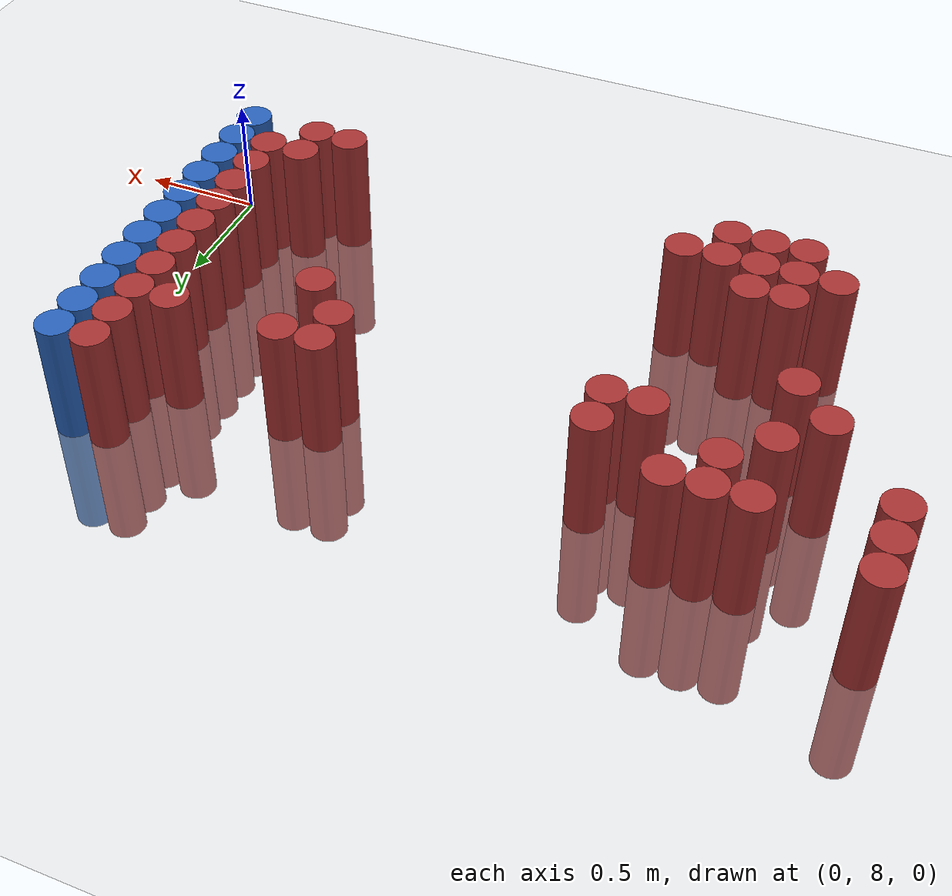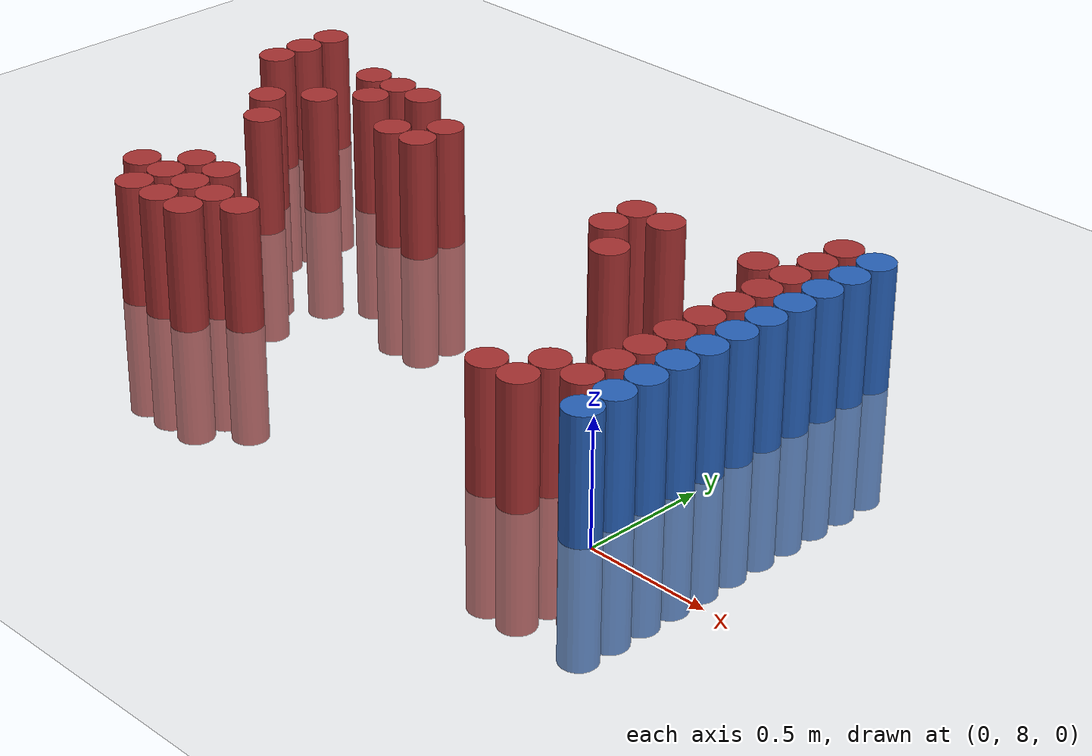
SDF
<sdf version="1.6">
 <world name="default">
  <model name="ground_plane">
   <static>1</static>
   <link name="link">
    <collision name="collision">
     <geometry><plane><normal>0 0 1</normal><size>100 100</size></plane></geometry>
     <surface><friction><ode><mu>100</mu><mu2>50</mu2></ode></friction></surface>
    </collision>
    <visual name="visual">
     <cast_shadows>0</cast_shadows>
     <geometry><plane><normal>0 0 1</normal><size>100 100</size></plane></geometry>
     <material>
      <script><uri>file://media/materials/scripts/gazebo.material</uri><name>Gazebo/Grey</name></script>
     </material>
    </visual>
   </link>
  </model>
  <model name="unit_cylinder_179">
   <static>1</static>
   <pose>-3.075000 9.225000 0.000000 0.000000 0.000000 0.000000</pose>
   <link name="link">
    <inertial>
     <mass>1</mass>
     <inertia><ixx>0.145833</ixx><ixy>0</ixy><ixz>0</ixz><iyy>0.145833</iyy><iyz>0</iyz><izz>0.125</izz></inertia>
    </inertial>
    <collision name="collision">
     <geometry><cylinder><radius>0.075000</radius><length>1</length></cylinder></geometry>
    </collision>
    <visual name="visual">
     <geometry><cylinder><radius>0.075000</radius><length>1</length></cylinder></geometry>
     <material>
      <ambient>0.648000 0.192000 0.192000 1</ambient>
      <diffuse>0.648000 0.192000 0.192000 1</diffuse>
     </material>
     <material>
      <script><name>Gazebo/Grey</name><uri>file://media/materials/scripts/gazebo.material</uri></script>
     </material>
    </visual>
   </link>
  </model>
  <model name="unit_cylinder_180">
   <static>1</static>
   <pose>-3.075000 9.375000 0.000000 0.000000 0.000000 0.000000</pose>
   <link name="link">
    <inertial>
     <mass>1</mass>
     <inertia><ixx>0.145833</ixx><ixy>0</ixy><ixz>0</ixz><iyy>0.145833</iyy><iyz>0</iyz><izz>0.125</izz></inertia>
    </inertial>
    <collision name="collision">
     <geometry><cylinder><radius>0.075000</radius><length>1</length></cylinder></geometry>
    </collision>
    <visual name="visual">
     <geometry><cylinder><radius>0.075000</radius><length>1</length></cylinder></geometry>
     <material>
      <ambient>0.648000 0.192000 0.192000 1</ambient>
      <diffuse>0.648000 0.192000 0.192000 1</diffuse>
     </material>
     <material>
      <script><name>Gazebo/Grey</name><uri>file://media/materials/scripts/gazebo.material</uri></script>
     </material>
    </visual>
   </link>
  </model>
  <model name="unit_cylinder_181">
   <static>1</static>
   <pose>-3.075000 9.525000 0.000000 0.000000 0.000000 0.000000</pose>
   <link name="link">
    <inertial>
     <mass>1</mass>
     <inertia><ixx>0.145833</ixx><ixy>0</ixy><ixz>0</ixz><iyy>0.145833</iyy><iyz>0</iyz><izz>0.125</izz></inertia>
    </inertial>
    <collision name="collision">
     <geometry><cylinder><radius>0.075000</radius><length>1</length></cylinder></geometry>
    </collision>
    <visual name="visual">
     <geometry><cylinder><radius>0.075000</radius><length>1</length></cylinder></geometry>
     <material>
      <ambient>0.648000 0.192000 0.192000 1</ambient>
      <diffuse>0.648000 0.192000 0.192000 1</diffuse>
     </material>
     <material>
      <script><name>Gazebo/Grey</name><uri>file://media/materials/scripts/gazebo.material</uri></script>
     </material>
    </visual>
   </link>
  </model>
  <model name="unit_cylinder_187">
   <static>1</static>
   <pose>-2.775000 8.925000 0.000000 0.000000 0.000000 0.000000</pose>
   <link name="link">
    <inertial>
     <mass>1</mass>
     <inertia><ixx>0.145833</ixx><ixy>0</ixy><ixz>0</ixz><iyy>0.145833</iyy><iyz>0</iyz><izz>0.125</izz></inertia>
    </inertial>
    <collision name="collision">
     <geometry><cylinder><radius>0.075000</radius><length>1</length></cylinder></geometry>
    </collision>
    <visual name="visual">
     <geometry><cylinder><radius>0.075000</radius><length>1</length></cylinder></geometry>
     <material>
      <ambient>0.648000 0.192000 0.192000 1</ambient>
      <diffuse>0.648000 0.192000 0.192000 1</diffuse>
     </material>
     <material>
      <script><name>Gazebo/Grey</name><uri>file://media/materials/scripts/gazebo.material</uri></script>
     </material>
    </visual>
   </link>
  </model>
  <model name="unit_cylinder_191">
   <static>1</static>
   <pose>-2.625000 8.175000 0.000000 0.000000 0.000000 0.000000</pose>
   <link name="link">
    <inertial>
     <mass>1</mass>
     <inertia><ixx>0.145833</ixx><ixy>0</ixy><ixz>0</ixz><iyy>0.145833</iyy><iyz>0</iyz><izz>0.125</izz></inertia>
    </inertial>
    <collision name="collision">
     <geometry><cylinder><radius>0.075000</radius><length>1</length></cylinder></geometry>
    </collision>
    <visual name="visual">
     <geometry><cylinder><radius>0.075000</radius><length>1</length></cylinder></geometry>
     <material>
      <ambient>0.648000 0.192000 0.192000 1</ambient>
      <diffuse>0.648000 0.192000 0.192000 1</diffuse>
     </material>
     <material>
      <script><name>Gazebo/Grey</name><uri>file://media/materials/scripts/gazebo.material</uri></script>
     </material>
    </visual>
   </link>
  </model>
  <model name="unit_cylinder_192">
   <static>1</static>
   <pose>-2.625000 8.775000 0.000000 0.000000 0.000000 0.000000</pose>
   <link name="link">
    <inertial>
     <mass>1</mass>
     <inertia><ixx>0.145833</ixx><ixy>0</ixy><ixz>0</ixz><iyy>0.145833</iyy><iyz>0</iyz><izz>0.125</izz></inertia>
    </inertial>
    <collision name="collision">
     <geometry><cylinder><radius>0.075000</radius><length>1</length></cylinder></geometry>
    </collision>
    <visual name="visual">
     <geometry><cylinder><radius>0.075000</radius><length>1</length></cylinder></geometry>
     <material>
      <ambient>0.648000 0.192000 0.192000 1</ambient>
      <diffuse>0.648000 0.192000 0.192000 1</diffuse>
     </material>
     <material>
      <script><name>Gazebo/Grey</name><uri>file://media/materials/scripts/gazebo.material</uri></script>
     </material>
    </visual>
   </link>
  </model>
  <model name="unit_cylinder_193">
   <static>1</static>
   <pose>-2.625000 9.075000 0.000000 0.000000 0.000000 0.000000</pose>
   <link name="link">
    <inertial>
     <mass>1</mass>
     <inertia><ixx>0.145833</ixx><ixy>0</ixy><ixz>0</ixz><iyy>0.145833</iyy><iyz>0</iyz><izz>0.125</izz></inertia>
    </inertial>
    <collision name="collision">
     <geometry><cylinder><radius>0.075000</radius><length>1</length></cylinder></geometry>
    </collision>
    <visual name="visual">
     <geometry><cylinder><radius>0.075000</radius><length>1</length></cylinder></geometry>
     <material>
      <ambient>0.648000 0.192000 0.192000 1</ambient>
      <diffuse>0.648000 0.192000 0.192000 1</diffuse>
     </material>
     <material>
      <script><name>Gazebo/Grey</name><uri>file://media/materials/scripts/gazebo.material</uri></script>
     </material>
    </visual>
   </link>
  </model>
  <model name="unit_cylinder_194">
   <static>1</static>
   <pose>-2.625000 9.375000 0.000000 0.000000 0.000000 0.000000</pose>
   <link name="link">
    <inertial>
     <mass>1</mass>
     <inertia><ixx>0.145833</ixx><ixy>0</ixy><ixz>0</ixz><iyy>0.145833</iyy><iyz>0</iyz><izz>0.125</izz></inertia>
    </inertial>
    <collision name="collision">
     <geometry><cylinder><radius>0.075000</radius><length>1</length></cylinder></geometry>
    </collision>
    <visual name="visual">
     <geometry><cylinder><radius>0.075000</radius><length>1</length></cylinder></geometry>
     <material>
      <ambient>0.648000 0.192000 0.192000 1</ambient>
      <diffuse>0.648000 0.192000 0.192000 1</diffuse>
     </material>
     <material>
      <script><name>Gazebo/Grey</name><uri>file://media/materials/scripts/gazebo.material</uri></script>
     </material>
    </visual>
   </link>
  </model>
  <model name="unit_cylinder_198">
   <static>1</static>
   <pose>-2.475000 8.025000 0.000000 0.000000 0.000000 0.000000</pose>
   <link name="link">
    <inertial>
     <mass>1</mass>
     <inertia><ixx>0.145833</ixx><ixy>0</ixy><ixz>0</ixz><iyy>0.145833</iyy><iyz>0</iyz><izz>0.125</izz></inertia>
    </inertial>
    <collision name="collision">
     <geometry><cylinder><radius>0.075000</radius><length>1</length></cylinder></geometry>
    </collision>
    <visual name="visual">
     <geometry><cylinder><radius>0.075000</radius><length>1</length></cylinder></geometry>
     <material>
      <ambient>0.648000 0.192000 0.192000 1</ambient>
      <diffuse>0.648000 0.192000 0.192000 1</diffuse>
     </material>
     <material>
      <script><name>Gazebo/Grey</name><uri>file://media/materials/scripts/gazebo.material</uri></script>
     </material>
    </visual>
   </link>
  </model>
  <model name="unit_cylinder_199">
   <static>1</static>
   <pose>-2.475000 8.175000 0.000000 0.000000 0.000000 0.000000</pose>
   <link name="link">
    <inertial>
     <mass>1</mass>
     <inertia><ixx>0.145833</ixx><ixy>0</ixy><ixz>0</ixz><iyy>0.145833</iyy><iyz>0</iyz><izz>0.125</izz></inertia>
    </inertial>
    <collision name="collision">
     <geometry><cylinder><radius>0.075000</radius><length>1</length></cylinder></geometry>
    </collision>
    <visual name="visual">
     <geometry><cylinder><radius>0.075000</radius><length>1</length></cylinder></geometry>
     <material>
      <ambient>0.648000 0.192000 0.192000 1</ambient>
      <diffuse>0.648000 0.192000 0.192000 1</diffuse>
     </material>
     <material>
      <script><name>Gazebo/Grey</name><uri>file://media/materials/scripts/gazebo.material</uri></script>
     </material>
    </visual>
   </link>
  </model>
  <model name="unit_cylinder_200">
   <static>1</static>
   <pose>-2.475000 8.325000 0.000000 0.000000 0.000000 0.000000</pose>
   <link name="link">
    <inertial>
     <mass>1</mass>
     <inertia><ixx>0.145833</ixx><ixy>0</ixy><ixz>0</ixz><iyy>0.145833</iyy><iyz>0</iyz><izz>0.125</izz></inertia>
    </inertial>
    <collision name="collision">
     <geometry><cylinder><radius>0.075000</radius><length>1</length></cylinder></geometry>
    </collision>
    <visual name="visual">
     <geometry><cylinder><radius>0.075000</radius><length>1</length></cylinder></geometry>
     <material>
      <ambient>0.648000 0.192000 0.192000 1</ambient>
      <diffuse>0.648000 0.192000 0.192000 1</diffuse>
     </material>
     <material>
      <script><name>Gazebo/Grey</name><uri>file://media/materials/scripts/gazebo.material</uri></script>
     </material>
    </visual>
   </link>
  </model>
  <model name="unit_cylinder_201">
   <static>1</static>
   <pose>-2.475000 9.225000 0.000000 0.000000 0.000000 0.000000</pose>
   <link name="link">
    <inertial>
     <mass>1</mass>
     <inertia><ixx>0.145833</ixx><ixy>0</ixy><ixz>0</ixz><iyy>0.145833</iyy><iyz>0</iyz><izz>0.125</izz></inertia>
    </inertial>
    <collision name="collision">
     <geometry><cylinder><radius>0.075000</radius><length>1</length></cylinder></geometry>
    </collision>
    <visual name="visual">
     <geometry><cylinder><radius>0.075000</radius><length>1</length></cylinder></geometry>
     <material>
      <ambient>0.648000 0.192000 0.192000 1</ambient>
      <diffuse>0.648000 0.192000 0.192000 1</diffuse>
     </material>
     <material>
      <script><name>Gazebo/Grey</name><uri>file://media/materials/scripts/gazebo.material</uri></script>
     </material>
    </visual>
   </link>
  </model>
  <model name="unit_cylinder_202">
   <static>1</static>
   <pose>-2.475000 9.375000 0.000000 0.000000 0.000000 0.000000</pose>
   <link name="link">
    <inertial>
     <mass>1</mass>
     <inertia><ixx>0.145833</ixx><ixy>0</ixy><ixz>0</ixz><iyy>0.145833</iyy><iyz>0</iyz><izz>0.125</izz></inertia>
    </inertial>
    <collision name="collision">
     <geometry><cylinder><radius>0.075000</radius><length>1</length></cylinder></geometry>
    </collision>
    <visual name="visual">
     <geometry><cylinder><radius>0.075000</radius><length>1</length></cylinder></geometry>
     <material>
      <ambient>0.648000 0.192000 0.192000 1</ambient>
      <diffuse>0.648000 0.192000 0.192000 1</diffuse>
     </material>
     <material>
      <script><name>Gazebo/Grey</name><uri>file://media/materials/scripts/gazebo.material</uri></script>
     </material>
    </visual>
   </link>
  </model>
  <model name="unit_cylinder_204">
   <static>1</static>
   <pose>-2.325000 8.025000 0.000000 0.000000 0.000000 0.000000</pose>
   <link name="link">
    <inertial>
     <mass>1</mass>
     <inertia><ixx>0.145833</ixx><ixy>0</ixy><ixz>0</ixz><iyy>0.145833</iyy><iyz>0</iyz><izz>0.125</izz></inertia>
    </inertial>
    <collision name="collision">
     <geometry><cylinder><radius>0.075000</radius><length>1</length></cylinder></geometry>
    </collision>
    <visual name="visual">
     <geometry><cylinder><radius>0.075000</radius><length>1</length></cylinder></geometry>
     <material>
      <ambient>0.648000 0.192000 0.192000 1</ambient>
      <diffuse>0.648000 0.192000 0.192000 1</diffuse>
     </material>
     <material>
      <script><name>Gazebo/Grey</name><uri>file://media/materials/scripts/gazebo.material</uri></script>
     </material>
    </visual>
   </link>
  </model>
  <model name="unit_cylinder_205">
   <static>1</static>
   <pose>-2.325000 8.175000 0.000000 0.000000 0.000000 0.000000</pose>
   <link name="link">
    <inertial>
     <mass>1</mass>
     <inertia><ixx>0.145833</ixx><ixy>0</ixy><ixz>0</ixz><iyy>0.145833</iyy><iyz>0</iyz><izz>0.125</izz></inertia>
    </inertial>
    <collision name="collision">
     <geometry><cylinder><radius>0.075000</radius><length>1</length></cylinder></geometry>
    </collision>
    <visual name="visual">
     <geometry><cylinder><radius>0.075000</radius><length>1</length></cylinder></geometry>
     <material>
      <ambient>0.648000 0.192000 0.192000 1</ambient>
      <diffuse>0.648000 0.192000 0.192000 1</diffuse>
     </material>
     <material>
      <script><name>Gazebo/Grey</name><uri>file://media/materials/scripts/gazebo.material</uri></script>
     </material>
    </visual>
   </link>
  </model>
  <model name="unit_cylinder_206">
   <static>1</static>
   <pose>-2.325000 8.325000 0.000000 0.000000 0.000000 0.000000</pose>
   <link name="link">
    <inertial>
     <mass>1</mass>
     <inertia><ixx>0.145833</ixx><ixy>0</ixy><ixz>0</ixz><iyy>0.145833</iyy><iyz>0</iyz><izz>0.125</izz></inertia>
    </inertial>
    <collision name="collision">
     <geometry><cylinder><radius>0.075000</radius><length>1</length></cylinder></geometry>
    </collision>
    <visual name="visual">
     <geometry><cylinder><radius>0.075000</radius><length>1</length></cylinder></geometry>
     <material>
      <ambient>0.648000 0.192000 0.192000 1</ambient>
      <diffuse>0.648000 0.192000 0.192000 1</diffuse>
     </material>
     <material>
      <script><name>Gazebo/Grey</name><uri>file://media/materials/scripts/gazebo.material</uri></script>
     </material>
    </visual>
   </link>
  </model>
  <model name="unit_cylinder_207">
   <static>1</static>
   <pose>-2.325000 9.375000 0.000000 0.000000 0.000000 0.000000</pose>
   <link name="link">
    <inertial>
     <mass>1</mass>
     <inertia><ixx>0.145833</ixx><ixy>0</ixy><ixz>0</ixz><iyy>0.145833</iyy><iyz>0</iyz><izz>0.125</izz></inertia>
    </inertial>
    <collision name="collision">
     <geometry><cylinder><radius>0.075000</radius><length>1</length></cylinder></geometry>
    </collision>
    <visual name="visual">
     <geometry><cylinder><radius>0.075000</radius><length>1</length></cylinder></geometry>
     <material>
      <ambient>0.648000 0.192000 0.192000 1</ambient>
      <diffuse>0.648000 0.192000 0.192000 1</diffuse>
     </material>
     <material>
      <script><name>Gazebo/Grey</name><uri>file://media/materials/scripts/gazebo.material</uri></script>
     </material>
    </visual>
   </link>
  </model>
  <model name="unit_cylinder_208">
   <static>1</static>
   <pose>-2.175000 8.025000 0.000000 0.000000 0.000000 0.000000</pose>
   <link name="link">
    <inertial>
     <mass>1</mass>
     <inertia><ixx>0.145833</ixx><ixy>0</ixy><ixz>0</ixz><iyy>0.145833</iyy><iyz>0</iyz><izz>0.125</izz></inertia>
    </inertial>
    <collision name="collision">
     <geometry><cylinder><radius>0.075000</radius><length>1</length></cylinder></geometry>
    </collision>
    <visual name="visual">
     <geometry><cylinder><radius>0.075000</radius><length>1</length></cylinder></geometry>
     <material>
      <ambient>0.648000 0.192000 0.192000 1</ambient>
      <diffuse>0.648000 0.192000 0.192000 1</diffuse>
     </material>
     <material>
      <script><name>Gazebo/Grey</name><uri>file://media/materials/scripts/gazebo.material</uri></script>
     </material>
    </visual>
   </link>
  </model>
  <model name="unit_cylinder_209">
   <static>1</static>
   <pose>-2.175000 8.175000 0.000000 0.000000 0.000000 0.000000</pose>
   <link name="link">
    <inertial>
     <mass>1</mass>
     <inertia><ixx>0.145833</ixx><ixy>0</ixy><ixz>0</ixz><iyy>0.145833</iyy><iyz>0</iyz><izz>0.125</izz></inertia>
    </inertial>
    <collision name="collision">
     <geometry><cylinder><radius>0.075000</radius><length>1</length></cylinder></geometry>
    </collision>
    <visual name="visual">
     <geometry><cylinder><radius>0.075000</radius><length>1</length></cylinder></geometry>
     <material>
      <ambient>0.648000 0.192000 0.192000 1</ambient>
      <diffuse>0.648000 0.192000 0.192000 1</diffuse>
     </material>
     <material>
      <script><name>Gazebo/Grey</name><uri>file://media/materials/scripts/gazebo.material</uri></script>
     </material>
    </visual>
   </link>
  </model>
  <model name="unit_cylinder_210">
   <static>1</static>
   <pose>-2.175000 9.075000 0.000000 0.000000 0.000000 0.000000</pose>
   <link name="link">
    <inertial>
     <mass>1</mass>
     <inertia><ixx>0.145833</ixx><ixy>0</ixy><ixz>0</ixz><iyy>0.145833</iyy><iyz>0</iyz><izz>0.125</izz></inertia>
    </inertial>
    <collision name="collision">
     <geometry><cylinder><radius>0.075000</radius><length>1</length></cylinder></geometry>
    </collision>
    <visual name="visual">
     <geometry><cylinder><radius>0.075000</radius><length>1</length></cylinder></geometry>
     <material>
      <ambient>0.648000 0.192000 0.192000 1</ambient>
      <diffuse>0.648000 0.192000 0.192000 1</diffuse>
     </material>
     <material>
      <script><name>Gazebo/Grey</name><uri>file://media/materials/scripts/gazebo.material</uri></script>
     </material>
    </visual>
   </link>
  </model>
  <model name="unit_cylinder_211">
   <static>1</static>
   <pose>-2.025000 8.175000 0.000000 0.000000 0.000000 0.000000</pose>
   <link name="link">
    <inertial>
     <mass>1</mass>
     <inertia><ixx>0.145833</ixx><ixy>0</ixy><ixz>0</ixz><iyy>0.145833</iyy><iyz>0</iyz><izz>0.125</izz></inertia>
    </inertial>
    <collision name="collision">
     <geometry><cylinder><radius>0.075000</radius><length>1</length></cylinder></geometry>
    </collision>
    <visual name="visual">
     <geometry><cylinder><radius>0.075000</radius><length>1</length></cylinder></geometry>
     <material>
      <ambient>0.648000 0.192000 0.192000 1</ambient>
      <diffuse>0.648000 0.192000 0.192000 1</diffuse>
     </material>
     <material>
      <script><name>Gazebo/Grey</name><uri>file://media/materials/scripts/gazebo.material</uri></script>
     </material>
    </visual>
   </link>
  </model>
  <model name="unit_cylinder_212">
   <static>1</static>
   <pose>-2.025000 9.075000 0.000000 0.000000 0.000000 0.000000</pose>
   <link name="link">
    <inertial>
     <mass>1</mass>
     <inertia><ixx>0.145833</ixx><ixy>0</ixy><ixz>0</ixz><iyy>0.145833</iyy><iyz>0</iyz><izz>0.125</izz></inertia>
    </inertial>
    <collision name="collision">
     <geometry><cylinder><radius>0.075000</radius><length>1</length></cylinder></geometry>
    </collision>
    <visual name="visual">
     <geometry><cylinder><radius>0.075000</radius><length>1</length></cylinder></geometry>
     <material>
      <ambient>0.648000 0.192000 0.192000 1</ambient>
      <diffuse>0.648000 0.192000 0.192000 1</diffuse>
     </material>
     <material>
      <script><name>Gazebo/Grey</name><uri>file://media/materials/scripts/gazebo.material</uri></script>
     </material>
    </visual>
   </link>
  </model>
  <model name="unit_cylinder_213">
   <static>1</static>
   <pose>-2.025000 9.225000 0.000000 0.000000 0.000000 0.000000</pose>
   <link name="link">
    <inertial>
     <mass>1</mass>
     <inertia><ixx>0.145833</ixx><ixy>0</ixy><ixz>0</ixz><iyy>0.145833</iyy><iyz>0</iyz><izz>0.125</izz></inertia>
    </inertial>
    <collision name="collision">
     <geometry><cylinder><radius>0.075000</radius><length>1</length></cylinder></geometry>
    </collision>
    <visual name="visual">
     <geometry><cylinder><radius>0.075000</radius><length>1</length></cylinder></geometry>
     <material>
      <ambient>0.648000 0.192000 0.192000 1</ambient>
      <diffuse>0.648000 0.192000 0.192000 1</diffuse>
     </material>
     <material>
      <script><name>Gazebo/Grey</name><uri>file://media/materials/scripts/gazebo.material</uri></script>
     </material>
    </visual>
   </link>
  </model>
  <model name="unit_cylinder_223">
   <static>1</static>
   <pose>-0.975000 9.075000 0.000000 0.000000 0.000000 0.000000</pose>
   <link name="link">
    <inertial>
     <mass>1</mass>
     <inertia><ixx>0.145833</ixx><ixy>0</ixy><ixz>0</ixz><iyy>0.145833</iyy><iyz>0</iyz><izz>0.125</izz></inertia>
    </inertial>
    <collision name="collision">
     <geometry><cylinder><radius>0.075000</radius><length>1</length></cylinder></geometry>
    </collision>
    <visual name="visual">
     <geometry><cylinder><radius>0.075000</radius><length>1</length></cylinder></geometry>
     <material>
      <ambient>0.648000 0.192000 0.192000 1</ambient>
      <diffuse>0.648000 0.192000 0.192000 1</diffuse>
     </material>
     <material>
      <script><name>Gazebo/Grey</name><uri>file://media/materials/scripts/gazebo.material</uri></script>
     </material>
    </visual>
   </link>
  </model>
  <model name="unit_cylinder_224">
   <static>1</static>
   <pose>-0.975000 9.225000 0.000000 0.000000 0.000000 0.000000</pose>
   <link name="link">
    <inertial>
     <mass>1</mass>
     <inertia><ixx>0.145833</ixx><ixy>0</ixy><ixz>0</ixz><iyy>0.145833</iyy><iyz>0</iyz><izz>0.125</izz></inertia>
    </inertial>
    <collision name="collision">
     <geometry><cylinder><radius>0.075000</radius><length>1</length></cylinder></geometry>
    </collision>
    <visual name="visual">
     <geometry><cylinder><radius>0.075000</radius><length>1</length></cylinder></geometry>
     <material>
      <ambient>0.648000 0.192000 0.192000 1</ambient>
      <diffuse>0.648000 0.192000 0.192000 1</diffuse>
     </material>
     <material>
      <script><name>Gazebo/Grey</name><uri>file://media/materials/scripts/gazebo.material</uri></script>
     </material>
    </visual>
   </link>
  </model>
  <model name="unit_cylinder_229">
   <static>1</static>
   <pose>-0.825000 8.925000 0.000000 0.000000 0.000000 0.000000</pose>
   <link name="link">
    <inertial>
     <mass>1</mass>
     <inertia><ixx>0.145833</ixx><ixy>0</ixy><ixz>0</ixz><iyy>0.145833</iyy><iyz>0</iyz><izz>0.125</izz></inertia>
    </inertial>
    <collision name="collision">
     <geometry><cylinder><radius>0.075000</radius><length>1</length></cylinder></geometry>
    </collision>
    <visual name="visual">
     <geometry><cylinder><radius>0.075000</radius><length>1</length></cylinder></geometry>
     <material>
      <ambient>0.648000 0.192000 0.192000 1</ambient>
      <diffuse>0.648000 0.192000 0.192000 1</diffuse>
     </material>
     <material>
      <script><name>Gazebo/Grey</name><uri>file://media/materials/scripts/gazebo.material</uri></script>
     </material>
    </visual>
   </link>
  </model>
  <model name="unit_cylinder_230">
   <static>1</static>
   <pose>-0.825000 9.225000 0.000000 0.000000 0.000000 0.000000</pose>
   <link name="link">
    <inertial>
     <mass>1</mass>
     <inertia><ixx>0.145833</ixx><ixy>0</ixy><ixz>0</ixz><iyy>0.145833</iyy><iyz>0</iyz><izz>0.125</izz></inertia>
    </inertial>
    <collision name="collision">
     <geometry><cylinder><radius>0.075000</radius><length>1</length></cylinder></geometry>
    </collision>
    <visual name="visual">
     <geometry><cylinder><radius>0.075000</radius><length>1</length></cylinder></geometry>
     <material>
      <ambient>0.648000 0.192000 0.192000 1</ambient>
      <diffuse>0.648000 0.192000 0.192000 1</diffuse>
     </material>
     <material>
      <script><name>Gazebo/Grey</name><uri>file://media/materials/scripts/gazebo.material</uri></script>
     </material>
    </visual>
   </link>
  </model>
  <model name="unit_cylinder_250">
   <static>1</static>
   <pose>-0.525000 8.025000 0.000000 0.000000 0.000000 0.000000</pose>
   <link name="link">
    <inertial>
     <mass>1</mass>
     <inertia><ixx>0.145833</ixx><ixy>0</ixy><ixz>0</ixz><iyy>0.145833</iyy><iyz>0</iyz><izz>0.125</izz></inertia>
    </inertial>
    <collision name="collision">
     <geometry><cylinder><radius>0.075000</radius><length>1</length></cylinder></geometry>
    </collision>
    <visual name="visual">
     <geometry><cylinder><radius>0.075000</radius><length>1</length></cylinder></geometry>
     <material>
      <ambient>0.648000 0.192000 0.192000 1</ambient>
      <diffuse>0.648000 0.192000 0.192000 1</diffuse>
     </material>
     <material>
      <script><name>Gazebo/Grey</name><uri>file://media/materials/scripts/gazebo.material</uri></script>
     </material>
    </visual>
   </link>
  </model>
  <model name="unit_cylinder_257">
   <static>1</static>
   <pose>-0.375000 8.025000 0.000000 0.000000 0.000000 0.000000</pose>
   <link name="link">
    <inertial>
     <mass>1</mass>
     <inertia><ixx>0.145833</ixx><ixy>0</ixy><ixz>0</ixz><iyy>0.145833</iyy><iyz>0</iyz><izz>0.125</izz></inertia>
    </inertial>
    <collision name="collision">
     <geometry><cylinder><radius>0.075000</radius><length>1</length></cylinder></geometry>
    </collision>
    <visual name="visual">
     <geometry><cylinder><radius>0.075000</radius><length>1</length></cylinder></geometry>
     <material>
      <ambient>0.648000 0.192000 0.192000 1</ambient>
      <diffuse>0.648000 0.192000 0.192000 1</diffuse>
     </material>
     <material>
      <script><name>Gazebo/Grey</name><uri>file://media/materials/scripts/gazebo.material</uri></script>
     </material>
    </visual>
   </link>
  </model>
  <model name="unit_cylinder_258">
   <static>1</static>
   <pose>-0.375000 8.175000 0.000000 0.000000 0.000000 0.000000</pose>
   <link name="link">
    <inertial>
     <mass>1</mass>
     <inertia><ixx>0.145833</ixx><ixy>0</ixy><ixz>0</ixz><iyy>0.145833</iyy><iyz>0</iyz><izz>0.125</izz></inertia>
    </inertial>
    <collision name="collision">
     <geometry><cylinder><radius>0.075000</radius><length>1</length></cylinder></geometry>
    </collision>
    <visual name="visual">
     <geometry><cylinder><radius>0.075000</radius><length>1</length></cylinder></geometry>
     <material>
      <ambient>0.648000 0.192000 0.192000 1</ambient>
      <diffuse>0.648000 0.192000 0.192000 1</diffuse>
     </material>
     <material>
      <script><name>Gazebo/Grey</name><uri>file://media/materials/scripts/gazebo.material</uri></script>
     </material>
    </visual>
   </link>
  </model>
  <model name="unit_cylinder_259">
   <static>1</static>
   <pose>-0.375000 9.225000 0.000000 0.000000 0.000000 0.000000</pose>
   <link name="link">
    <inertial>
     <mass>1</mass>
     <inertia><ixx>0.145833</ixx><ixy>0</ixy><ixz>0</ixz><iyy>0.145833</iyy><iyz>0</iyz><izz>0.125</izz></inertia>
    </inertial>
    <collision name="collision">
     <geometry><cylinder><radius>0.075000</radius><length>1</length></cylinder></geometry>
    </collision>
    <visual name="visual">
     <geometry><cylinder><radius>0.075000</radius><length>1</length></cylinder></geometry>
     <material>
      <ambient>0.648000 0.192000 0.192000 1</ambient>
      <diffuse>0.648000 0.192000 0.192000 1</diffuse>
     </material>
     <material>
      <script><name>Gazebo/Grey</name><uri>file://media/materials/scripts/gazebo.material</uri></script>
     </material>
    </visual>
   </link>
  </model>
  <model name="unit_cylinder_270">
   <static>1</static>
   <pose>-0.225000 8.175000 0.000000 0.000000 0.000000 0.000000</pose>
   <link name="link">
    <inertial>
     <mass>1</mass>
     <inertia><ixx>0.145833</ixx><ixy>0</ixy><ixz>0</ixz><iyy>0.145833</iyy><iyz>0</iyz><izz>0.125</izz></inertia>
    </inertial>
    <collision name="collision">
     <geometry><cylinder><radius>0.075000</radius><length>1</length></cylinder></geometry>
    </collision>
    <visual name="visual">
     <geometry><cylinder><radius>0.075000</radius><length>1</length></cylinder></geometry>
     <material>
      <ambient>0.648000 0.192000 0.192000 1</ambient>
      <diffuse>0.648000 0.192000 0.192000 1</diffuse>
     </material>
     <material>
      <script><name>Gazebo/Grey</name><uri>file://media/materials/scripts/gazebo.material</uri></script>
     </material>
    </visual>
   </link>
  </model>
  <model name="unit_cylinder_271">
   <static>1</static>
   <pose>-0.225000 8.325000 0.000000 0.000000 0.000000 0.000000</pose>
   <link name="link">
    <inertial>
     <mass>1</mass>
     <inertia><ixx>0.145833</ixx><ixy>0</ixy><ixz>0</ixz><iyy>0.145833</iyy><iyz>0</iyz><izz>0.125</izz></inertia>
    </inertial>
    <collision name="collision">
     <geometry><cylinder><radius>0.075000</radius><length>1</length></cylinder></geometry>
    </collision>
    <visual name="visual">
     <geometry><cylinder><radius>0.075000</radius><length>1</length></cylinder></geometry>
     <material>
      <ambient>0.648000 0.192000 0.192000 1</ambient>
      <diffuse>0.648000 0.192000 0.192000 1</diffuse>
     </material>
     <material>
      <script><name>Gazebo/Grey</name><uri>file://media/materials/scripts/gazebo.material</uri></script>
     </material>
    </visual>
   </link>
  </model>
  <model name="unit_cylinder_272">
   <static>1</static>
   <pose>-0.225000 8.475000 0.000000 0.000000 0.000000 0.000000</pose>
   <link name="link">
    <inertial>
     <mass>1</mass>
     <inertia><ixx>0.145833</ixx><ixy>0</ixy><ixz>0</ixz><iyy>0.145833</iyy><iyz>0</iyz><izz>0.125</izz></inertia>
    </inertial>
    <collision name="collision">
     <geometry><cylinder><radius>0.075000</radius><length>1</length></cylinder></geometry>
    </collision>
    <visual name="visual">
     <geometry><cylinder><radius>0.075000</radius><length>1</length></cylinder></geometry>
     <material>
      <ambient>0.648000 0.192000 0.192000 1</ambient>
      <diffuse>0.648000 0.192000 0.192000 1</diffuse>
     </material>
     <material>
      <script><name>Gazebo/Grey</name><uri>file://media/materials/scripts/gazebo.material</uri></script>
     </material>
    </visual>
   </link>
  </model>
  <model name="unit_cylinder_273">
   <static>1</static>
   <pose>-0.225000 8.625000 0.000000 0.000000 0.000000 0.000000</pose>
   <link name="link">
    <inertial>
     <mass>1</mass>
     <inertia><ixx>0.145833</ixx><ixy>0</ixy><ixz>0</ixz><iyy>0.145833</iyy><iyz>0</iyz><izz>0.125</izz></inertia>
    </inertial>
    <collision name="collision">
     <geometry><cylinder><radius>0.075000</radius><length>1</length></cylinder></geometry>
    </collision>
    <visual name="visual">
     <geometry><cylinder><radius>0.075000</radius><length>1</length></cylinder></geometry>
     <material>
      <ambient>0.648000 0.192000 0.192000 1</ambient>
      <diffuse>0.648000 0.192000 0.192000 1</diffuse>
     </material>
     <material>
      <script><name>Gazebo/Grey</name><uri>file://media/materials/scripts/gazebo.material</uri></script>
     </material>
    </visual>
   </link>
  </model>
  <model name="unit_cylinder_274">
   <static>1</static>
   <pose>-0.225000 8.775000 0.000000 0.000000 0.000000 0.000000</pose>
   <link name="link">
    <inertial>
     <mass>1</mass>
     <inertia><ixx>0.145833</ixx><ixy>0</ixy><ixz>0</ixz><iyy>0.145833</iyy><iyz>0</iyz><izz>0.125</izz></inertia>
    </inertial>
    <collision name="collision">
     <geometry><cylinder><radius>0.075000</radius><length>1</length></cylinder></geometry>
    </collision>
    <visual name="visual">
     <geometry><cylinder><radius>0.075000</radius><length>1</length></cylinder></geometry>
     <material>
      <ambient>0.648000 0.192000 0.192000 1</ambient>
      <diffuse>0.648000 0.192000 0.192000 1</diffuse>
     </material>
     <material>
      <script><name>Gazebo/Grey</name><uri>file://media/materials/scripts/gazebo.material</uri></script>
     </material>
    </visual>
   </link>
  </model>
  <model name="unit_cylinder_275">
   <static>1</static>
   <pose>-0.225000 8.925000 0.000000 0.000000 0.000000 0.000000</pose>
   <link name="link">
    <inertial>
     <mass>1</mass>
     <inertia><ixx>0.145833</ixx><ixy>0</ixy><ixz>0</ixz><iyy>0.145833</iyy><iyz>0</iyz><izz>0.125</izz></inertia>
    </inertial>
    <collision name="collision">
     <geometry><cylinder><radius>0.075000</radius><length>1</length></cylinder></geometry>
    </collision>
    <visual name="visual">
     <geometry><cylinder><radius>0.075000</radius><length>1</length></cylinder></geometry>
     <material>
      <ambient>0.648000 0.192000 0.192000 1</ambient>
      <diffuse>0.648000 0.192000 0.192000 1</diffuse>
     </material>
     <material>
      <script><name>Gazebo/Grey</name><uri>file://media/materials/scripts/gazebo.material</uri></script>
     </material>
    </visual>
   </link>
  </model>
  <model name="unit_cylinder_276">
   <static>1</static>
   <pose>-0.225000 9.075000 0.000000 0.000000 0.000000 0.000000</pose>
   <link name="link">
    <inertial>
     <mass>1</mass>
     <inertia><ixx>0.145833</ixx><ixy>0</ixy><ixz>0</ixz><iyy>0.145833</iyy><iyz>0</iyz><izz>0.125</izz></inertia>
    </inertial>
    <collision name="collision">
     <geometry><cylinder><radius>0.075000</radius><length>1</length></cylinder></geometry>
    </collision>
    <visual name="visual">
     <geometry><cylinder><radius>0.075000</radius><length>1</length></cylinder></geometry>
     <material>
      <ambient>0.648000 0.192000 0.192000 1</ambient>
      <diffuse>0.648000 0.192000 0.192000 1</diffuse>
     </material>
     <material>
      <script><name>Gazebo/Grey</name><uri>file://media/materials/scripts/gazebo.material</uri></script>
     </material>
    </visual>
   </link>
  </model>
  <model name="unit_cylinder_277">
   <static>1</static>
   <pose>-0.225000 9.225000 0.000000 0.000000 0.000000 0.000000</pose>
   <link name="link">
    <inertial>
     <mass>1</mass>
     <inertia><ixx>0.145833</ixx><ixy>0</ixy><ixz>0</ixz><iyy>0.145833</iyy><iyz>0</iyz><izz>0.125</izz></inertia>
    </inertial>
    <collision name="collision">
     <geometry><cylinder><radius>0.075000</radius><length>1</length></cylinder></geometry>
    </collision>
    <visual name="visual">
     <geometry><cylinder><radius>0.075000</radius><length>1</length></cylinder></geometry>
     <material>
      <ambient>0.648000 0.192000 0.192000 1</ambient>
      <diffuse>0.648000 0.192000 0.192000 1</diffuse>
     </material>
     <material>
      <script><name>Gazebo/Grey</name><uri>file://media/materials/scripts/gazebo.material</uri></script>
     </material>
    </visual>
   </link>
  </model>
  <model name="unit_cylinder_278">
   <static>1</static>
   <pose>-0.225000 9.375000 0.000000 0.000000 0.000000 0.000000</pose>
   <link name="link">
    <inertial>
     <mass>1</mass>
     <inertia><ixx>0.145833</ixx><ixy>0</ixy><ixz>0</ixz><iyy>0.145833</iyy><iyz>0</iyz><izz>0.125</izz></inertia>
    </inertial>
    <collision name="collision">
     <geometry><cylinder><radius>0.075000</radius><length>1</length></cylinder></geometry>
    </collision>
    <visual name="visual">
     <geometry><cylinder><radius>0.075000</radius><length>1</length></cylinder></geometry>
     <material>
      <ambient>0.648000 0.192000 0.192000 1</ambient>
      <diffuse>0.648000 0.192000 0.192000 1</diffuse>
     </material>
     <material>
      <script><name>Gazebo/Grey</name><uri>file://media/materials/scripts/gazebo.material</uri></script>
     </material>
    </visual>
   </link>
  </model>
  <model name="unit_cylinder_279">
   <static>1</static>
   <pose>-0.225000 9.525000 0.000000 0.000000 0.000000 0.000000</pose>
   <link name="link">
    <inertial>
     <mass>1</mass>
     <inertia><ixx>0.145833</ixx><ixy>0</ixy><ixz>0</ixz><iyy>0.145833</iyy><iyz>0</iyz><izz>0.125</izz></inertia>
    </inertial>
    <collision name="collision">
     <geometry><cylinder><radius>0.075000</radius><length>1</length></cylinder></geometry>
    </collision>
    <visual name="visual">
     <geometry><cylinder><radius>0.075000</radius><length>1</length></cylinder></geometry>
     <material>
      <ambient>0.648000 0.192000 0.192000 1</ambient>
      <diffuse>0.648000 0.192000 0.192000 1</diffuse>
     </material>
     <material>
      <script><name>Gazebo/Grey</name><uri>file://media/materials/scripts/gazebo.material</uri></script>
     </material>
    </visual>
   </link>
  </model>
  <model name="unit_cylinder_299">
   <static>1</static>
   <pose>-0.075000 8.025000 0.000000 0.000000 0.000000 0.000000</pose>
   <link name="link">
    <inertial>
     <mass>1</mass>
     <inertia><ixx>0.145833</ixx><ixy>0</ixy><ixz>0</ixz><iyy>0.145833</iyy><iyz>0</iyz><izz>0.125</izz></inertia>
    </inertial>
    <collision name="collision">
     <geometry><cylinder><radius>0.075000</radius><length>1</length></cylinder></geometry>
    </collision>
    <visual name="visual">
     <geometry><cylinder><radius>0.075000</radius><length>1</length></cylinder></geometry>
     <material>
      <ambient>0.152000 0.379000 0.720000 1</ambient>
      <diffuse>0.152000 0.379000 0.720000 1</diffuse>
     </material>
     <material>
      <script><name>Gazebo/Grey</name><uri>file://media/materials/scripts/gazebo.material</uri></script>
     </material>
    </visual>
   </link>
  </model>
  <model name="unit_cylinder_300">
   <static>1</static>
   <pose>-0.075000 8.175000 0.000000 0.000000 0.000000 0.000000</pose>
   <link name="link">
    <inertial>
     <mass>1</mass>
     <inertia><ixx>0.145833</ixx><ixy>0</ixy><ixz>0</ixz><iyy>0.145833</iyy><iyz>0</iyz><izz>0.125</izz></inertia>
    </inertial>
    <collision name="collision">
     <geometry><cylinder><radius>0.075000</radius><length>1</length></cylinder></geometry>
    </collision>
    <visual name="visual">
     <geometry><cylinder><radius>0.075000</radius><length>1</length></cylinder></geometry>
     <material>
      <ambient>0.152000 0.379000 0.720000 1</ambient>
      <diffuse>0.152000 0.379000 0.720000 1</diffuse>
     </material>
     <material>
      <script><name>Gazebo/Grey</name><uri>file://media/materials/scripts/gazebo.material</uri></script>
     </material>
    </visual>
   </link>
  </model>
  <model name="unit_cylinder_301">
   <static>1</static>
   <pose>-0.075000 8.325000 0.000000 0.000000 0.000000 0.000000</pose>
   <link name="link">
    <inertial>
     <mass>1</mass>
     <inertia><ixx>0.145833</ixx><ixy>0</ixy><ixz>0</ixz><iyy>0.145833</iyy><iyz>0</iyz><izz>0.125</izz></inertia>
    </inertial>
    <collision name="collision">
     <geometry><cylinder><radius>0.075000</radius><length>1</length></cylinder></geometry>
    </collision>
    <visual name="visual">
     <geometry><cylinder><radius>0.075000</radius><length>1</length></cylinder></geometry>
     <material>
      <ambient>0.152000 0.379000 0.720000 1</ambient>
      <diffuse>0.152000 0.379000 0.720000 1</diffuse>
     </material>
     <material>
      <script><name>Gazebo/Grey</name><uri>file://media/materials/scripts/gazebo.material</uri></script>
     </material>
    </visual>
   </link>
  </model>
  <model name="unit_cylinder_302">
   <static>1</static>
   <pose>-0.075000 8.475000 0.000000 0.000000 0.000000 0.000000</pose>
   <link name="link">
    <inertial>
     <mass>1</mass>
     <inertia><ixx>0.145833</ixx><ixy>0</ixy><ixz>0</ixz><iyy>0.145833</iyy><iyz>0</iyz><izz>0.125</izz></inertia>
    </inertial>
    <collision name="collision">
     <geometry><cylinder><radius>0.075000</radius><length>1</length></cylinder></geometry>
    </collision>
    <visual name="visual">
     <geometry><cylinder><radius>0.075000</radius><length>1</length></cylinder></geometry>
     <material>
      <ambient>0.152000 0.379000 0.720000 1</ambient>
      <diffuse>0.152000 0.379000 0.720000 1</diffuse>
     </material>
     <material>
      <script><name>Gazebo/Grey</name><uri>file://media/materials/scripts/gazebo.material</uri></script>
     </material>
    </visual>
   </link>
  </model>
  <model name="unit_cylinder_303">
   <static>1</static>
   <pose>-0.075000 8.625000 0.000000 0.000000 0.000000 0.000000</pose>
   <link name="link">
    <inertial>
     <mass>1</mass>
     <inertia><ixx>0.145833</ixx><ixy>0</ixy><ixz>0</ixz><iyy>0.145833</iyy><iyz>0</iyz><izz>0.125</izz></inertia>
    </inertial>
    <collision name="collision">
     <geometry><cylinder><radius>0.075000</radius><length>1</length></cylinder></geometry>
    </collision>
    <visual name="visual">
     <geometry><cylinder><radius>0.075000</radius><length>1</length></cylinder></geometry>
     <material>
      <ambient>0.152000 0.379000 0.720000 1</ambient>
      <diffuse>0.152000 0.379000 0.720000 1</diffuse>
     </material>
     <material>
      <script><name>Gazebo/Grey</name><uri>file://media/materials/scripts/gazebo.material</uri></script>
     </material>
    </visual>
   </link>
  </model>
  <model name="unit_cylinder_304">
   <static>1</static>
   <pose>-0.075000 8.775000 0.000000 0.000000 0.000000 0.000000</pose>
   <link name="link">
    <inertial>
     <mass>1</mass>
     <inertia><ixx>0.145833</ixx><ixy>0</ixy><ixz>0</ixz><iyy>0.145833</iyy><iyz>0</iyz><izz>0.125</izz></inertia>
    </inertial>
    <collision name="collision">
     <geometry><cylinder><radius>0.075000</radius><length>1</length></cylinder></geometry>
    </collision>
    <visual name="visual">
     <geometry><cylinder><radius>0.075000</radius><length>1</length></cylinder></geometry>
     <material>
      <ambient>0.152000 0.379000 0.720000 1</ambient>
      <diffuse>0.152000 0.379000 0.720000 1</diffuse>
     </material>
     <material>
      <script><name>Gazebo/Grey</name><uri>file://media/materials/scripts/gazebo.material</uri></script>
     </material>
    </visual>
   </link>
  </model>
  <model name="unit_cylinder_305">
   <static>1</static>
   <pose>-0.075000 8.925000 0.000000 0.000000 0.000000 0.000000</pose>
   <link name="link">
    <inertial>
     <mass>1</mass>
     <inertia><ixx>0.145833</ixx><ixy>0</ixy><ixz>0</ixz><iyy>0.145833</iyy><iyz>0</iyz><izz>0.125</izz></inertia>
    </inertial>
    <collision name="collision">
     <geometry><cylinder><radius>0.075000</radius><length>1</length></cylinder></geometry>
    </collision>
    <visual name="visual">
     <geometry><cylinder><radius>0.075000</radius><length>1</length></cylinder></geometry>
     <material>
      <ambient>0.152000 0.379000 0.720000 1</ambient>
      <diffuse>0.152000 0.379000 0.720000 1</diffuse>
     </material>
     <material>
      <script><name>Gazebo/Grey</name><uri>file://media/materials/scripts/gazebo.material</uri></script>
     </material>
    </visual>
   </link>
  </model>
  <model name="unit_cylinder_306">
   <static>1</static>
   <pose>-0.075000 9.075000 0.000000 0.000000 0.000000 0.000000</pose>
   <link name="link">
    <inertial>
     <mass>1</mass>
     <inertia><ixx>0.145833</ixx><ixy>0</ixy><ixz>0</ixz><iyy>0.145833</iyy><iyz>0</iyz><izz>0.125</izz></inertia>
    </inertial>
    <collision name="collision">
     <geometry><cylinder><radius>0.075000</radius><length>1</length></cylinder></geometry>
    </collision>
    <visual name="visual">
     <geometry><cylinder><radius>0.075000</radius><length>1</length></cylinder></geometry>
     <material>
      <ambient>0.152000 0.379000 0.720000 1</ambient>
      <diffuse>0.152000 0.379000 0.720000 1</diffuse>
     </material>
     <material>
      <script><name>Gazebo/Grey</name><uri>file://media/materials/scripts/gazebo.material</uri></script>
     </material>
    </visual>
   </link>
  </model>
  <model name="unit_cylinder_307">
   <static>1</static>
   <pose>-0.075000 9.225000 0.000000 0.000000 0.000000 0.000000</pose>
   <link name="link">
    <inertial>
     <mass>1</mass>
     <inertia><ixx>0.145833</ixx><ixy>0</ixy><ixz>0</ixz><iyy>0.145833</iyy><iyz>0</iyz><izz>0.125</izz></inertia>
    </inertial>
    <collision name="collision">
     <geometry><cylinder><radius>0.075000</radius><length>1</length></cylinder></geometry>
    </collision>
    <visual name="visual">
     <geometry><cylinder><radius>0.075000</radius><length>1</length></cylinder></geometry>
     <material>
      <ambient>0.152000 0.379000 0.720000 1</ambient>
      <diffuse>0.152000 0.379000 0.720000 1</diffuse>
     </material>
     <material>
      <script><name>Gazebo/Grey</name><uri>file://media/materials/scripts/gazebo.material</uri></script>
     </material>
    </visual>
   </link>
  </model>
  <model name="unit_cylinder_308">
   <static>1</static>
   <pose>-0.075000 9.375000 0.000000 0.000000 0.000000 0.000000</pose>
   <link name="link">
    <inertial>
     <mass>1</mass>
     <inertia><ixx>0.145833</ixx><ixy>0</ixy><ixz>0</ixz><iyy>0.145833</iyy><iyz>0</iyz><izz>0.125</izz></inertia>
    </inertial>
    <collision name="collision">
     <geometry><cylinder><radius>0.075000</radius><length>1</length></cylinder></geometry>
    </collision>
    <visual name="visual">
     <geometry><cylinder><radius>0.075000</radius><length>1</length></cylinder></geometry>
     <material>
      <ambient>0.152000 0.379000 0.720000 1</ambient>
      <diffuse>0.152000 0.379000 0.720000 1</diffuse>
     </material>
     <material>
      <script><name>Gazebo/Grey</name><uri>file://media/materials/scripts/gazebo.material</uri></script>
     </material>
    </visual>
   </link>
  </model>
  <model name="unit_cylinder_309">
   <static>1</static>
   <pose>-0.075000 9.525000 0.000000 0.000000 0.000000 0.000000</pose>
   <link name="link">
    <inertial>
     <mass>1</mass>
     <inertia><ixx>0.145833</ixx><ixy>0</ixy><ixz>0</ixz><iyy>0.145833</iyy><iyz>0</iyz><izz>0.125</izz></inertia>
    </inertial>
    <collision name="collision">
     <geometry><cylinder><radius>0.075000</radius><length>1</length></cylinder></geometry>
    </collision>
    <visual name="visual">
     <geometry><cylinder><radius>0.075000</radius><length>1</length></cylinder></geometry>
     <material>
      <ambient>0.152000 0.379000 0.720000 1</ambient>
      <diffuse>0.152000 0.379000 0.720000 1</diffuse>
     </material>
     <material>
      <script><name>Gazebo/Grey</name><uri>file://media/materials/scripts/gazebo.material</uri></script>
     </material>
    </visual>
   </link>
  </model>
 </world>
</sdf>
